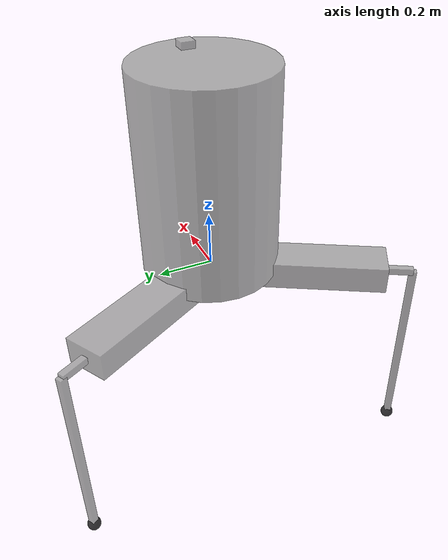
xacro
<?xml version="1.0"?>

<robot xmlns:xacro="http://www.ros.org/wiki/xacro" name="seneka">

  <!-- ##### LINKS ##### -->

  <link name="base_link">
    <visual>
      <origin xyz="0 0 0.375" rpy="0 0 0"/>
      <geometry>
        <cylinder radius="0.25" length="0.75"/>
      </geometry>
      <material name="default">
        <color rgba="0.65 0.65 0.65 0.8"/>
      </material>
    </visual>
  </link>

  <link name="tower_axis_link">
  </link>

  <link name="camera_link">
    <visual>
      <origin xyz="0.0 0 0" rpy="0 1.57 0"/>
      <geometry>
        <box size="0.05 0.05 0.05"/>
      </geometry>
      <material name="default"/>
    </visual>
  </link>

  <link name="hip_link_1">
    <visual>
      <origin xyz="0.25 0 0" rpy="0 1.57 0"/>
      <geometry>
        <box size="0.10 0.15 0.50"/>
      </geometry>
      <material name="default"/>
    </visual>
  </link>

  <link name="hip_link_2">
    <visual>
      <origin xyz="0.25 0 0" rpy="0 1.57 0"/>
      <geometry>
        <box size="0.10 0.15 0.50"/>
      </geometry>
      <material name="default"/>
    </visual>
  </link>

  <link name="hip_link_3">
    <visual>
      <origin xyz="0.25 0 0" rpy="0 1.57 0"/>
      <geometry>
        <box size="0.10 0.15 0.50"/>
      </geometry>
      <material name="default"/>
    </visual>
  </link>

  <link name="thigh_link_1">
    <visual>
      <origin xyz="0.125 0 0" rpy="0 1.57 0"/>
      <geometry>
        <box size="0.025 0.025 0.25"/>
      </geometry>
      <material name="default"/>
    </visual>
  </link>

  <link name="thigh_link_2">
    <visual>
      <origin xyz="0.125 0 0" rpy="0 1.57 0"/>
      <geometry>
        <box size="0.025 0.025 0.25"/>
      </geometry>
      <material name="default"/>
    </visual>
  </link>

  <link name="thigh_link_3">
    <visual>
      <origin xyz="0.125 0 0" rpy="0 1.57 0"/>
      <geometry>
        <box size="0.025 0.025 0.25"/>
      </geometry>
      <material name="default"/>
    </visual>
  </link>

  <link name="leg_link_1">
    <visual>
      <origin xyz="0 0 -0.375" rpy="0 0 0"/>
      <geometry>
        <box size="0.025 0.025 0.75"/>
      </geometry>
      <material name="default"/>
    </visual>
  </link>

  <link name="leg_link_2">
    <visual>
      <origin xyz="0 0 -0.375" rpy="0 0 0"/>
      <geometry>
        <box size="0.025 0.025 0.75"/>
      </geometry>
      <material name="default"/>
    </visual>
  </link>

  <link name="leg_link_3">
    <visual>
      <origin xyz="0 0 -0.375" rpy="0 0 0"/>
      <geometry>
        <box size="0.025 0.025 0.75"/>
      </geometry>
      <material name="default"/>
    </visual>
  </link>

  <link name="foot_link_1">
    <visual>
      <origin xyz="0 0 0" rpy="0 0 0"/>
      <geometry>
        <sphere radius="0.025"/>
      </geometry>
      <material name="black">
        <color rgba="0 0 0 0.8"/>
      </material>
    </visual>
  </link>

  <link name="foot_link_2">
    <visual>
      <origin xyz="0 0 0" rpy="0 0 0"/>
      <geometry>
        <sphere radius="0.025"/>
      </geometry>
      <material name="black"/>
    </visual>
  </link>

  <link name="foot_link_3">
    <visual>
      <origin xyz="0 0 0" rpy="0 0 0"/>
      <geometry>
        <sphere radius="0.025"/>
      </geometry>
      <material name="black"/>
    </visual>
  </link>

  <!-- ##### JOINTS ##### -->

  <joint name="tower_axis_joint" type="continuous">
    <parent link="base_link"/>
    <child link="tower_axis_link"/>
    <origin xyz="0 0 0.75" rpy="0 0 0"/>
    <axis xyz="0 0 1"/>
  </joint>

  <joint name="camera_joint" type="fixed">
    <parent link="tower_axis_link"/>
    <child link="camera_link"/>
    <origin xyz="0.15 0 0" rpy="0 0 0"/>
  </joint>

  <joint name="base_joint_1" type="fixed">
    <parent link="base_link"/>
    <child link="hip_link_1"/>
    <origin xyz="0.15 0 0" rpy="0 0 0"/>
  </joint>

  <joint name="base_joint_2" type="fixed">
    <parent link="base_link"/>
    <child link="hip_link_2"/>
    <origin xyz="-0.075 0.13 0" rpy="0 0 2.09"/>
  </joint>

  <joint name="base_joint_3" type="fixed">
    <parent link="base_link"/>
    <child link="hip_link_3"/>
    <origin xyz="-0.075 -0.13 0" rpy="0 0 4.19"/>
  </joint>

  <joint name="hip_joint_1" type="revolute">
    <parent link="hip_link_1"/>
    <child link="thigh_link_1"/>
    <origin xyz="0.35 0 0" rpy="0 0 0"/>
    <axis xyz="0 1 0"/>
    <limit effort="1000.00" lower="0.00" upper="-1.57" velocity="0.50"/>
  </joint>

  <joint name="hip_joint_2" type="revolute">
    <parent link="hip_link_2"/>
    <child link="thigh_link_2"/>
    <origin xyz="0.35 0 0" rpy="0 0 0"/>
    <axis xyz="0 1 0"/>
    <limit effort="1000.00" lower="0.00" upper="-1.57" velocity="0.50"/>
  </joint>

  <joint name="hip_joint_3" type="revolute">
    <parent link="hip_link_3"/>
    <child link="thigh_link_3"/>
    <origin xyz="0.35 0 0" rpy="0 0 0"/>
    <axis xyz="0 1 0"/>
    <limit effort="1000.00" lower="0.00" upper="-1.57" velocity="0.50"/>
  </joint>

  <joint name="knee_joint_1" type="revolute">
    <parent link="thigh_link_1"/>
    <child link="leg_link_1"/>
    <origin xyz="0.25 0 0"/>
    <axis xyz="0 1 0"/>
    <limit effort="1000.00" lower="0.00" upper="1.57" velocity="0.50"/>
  </joint>

  <joint name="knee_joint_2" type="revolute">
    <parent link="thigh_link_2"/>
    <child link="leg_link_2"/>
    <origin xyz="0.25 0 0"/>
    <axis xyz="0 1 0"/>
    <limit effort="1000.00" lower="0.00" upper="1.57" velocity="0.50"/>
  </joint>

  <joint name="knee_joint_3" type="revolute">
    <parent link="thigh_link_3"/>
    <child link="leg_link_3"/>
    <origin xyz="0.25 0 0"/>
    <axis xyz="0 1 0"/>
    <limit effort="1000.00" lower="0.00" upper="1.57" velocity="0.50"/>
  </joint>

  <joint name="foot_joint_1" type="fixed">
    <parent link="leg_link_1"/>
    <child link="foot_link_1"/>
    <origin xyz="0 0 -0.75"/>
  </joint>

  <joint name="foot_joint_2" type="fixed">
    <parent link="leg_link_2"/>
    <child link="foot_link_2"/>
    <origin xyz="0 0 -0.75"/>
  </joint>

  <joint name="foot_joint_3" type="fixed">
    <parent link="leg_link_3"/>
    <child link="foot_link_3"/>
    <origin xyz="0 0 -0.75"/>
  </joint>

</robot>
